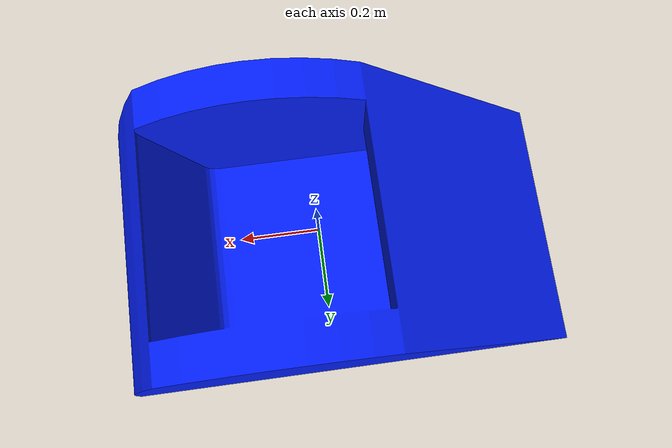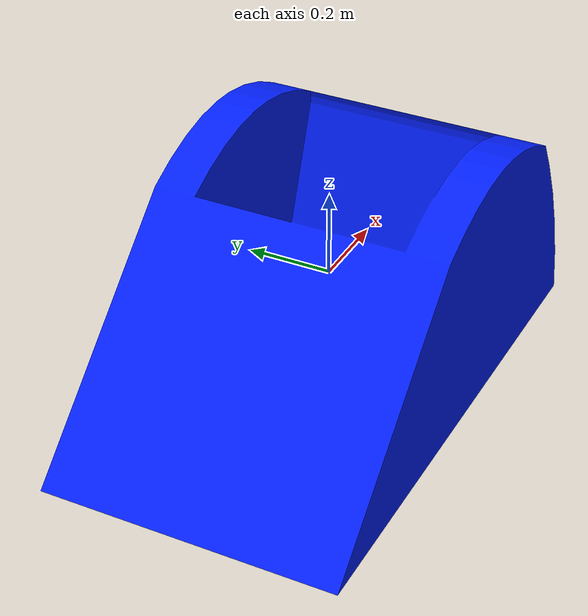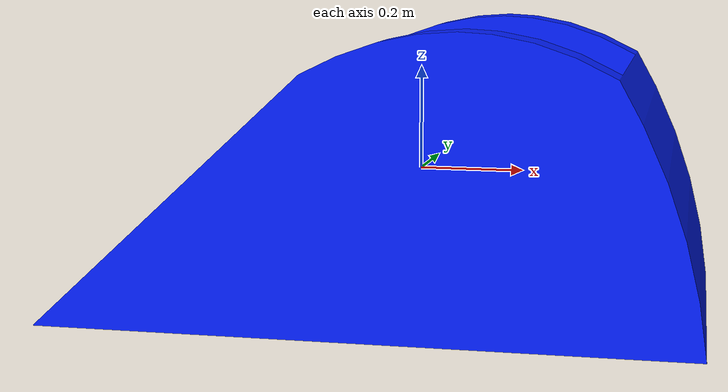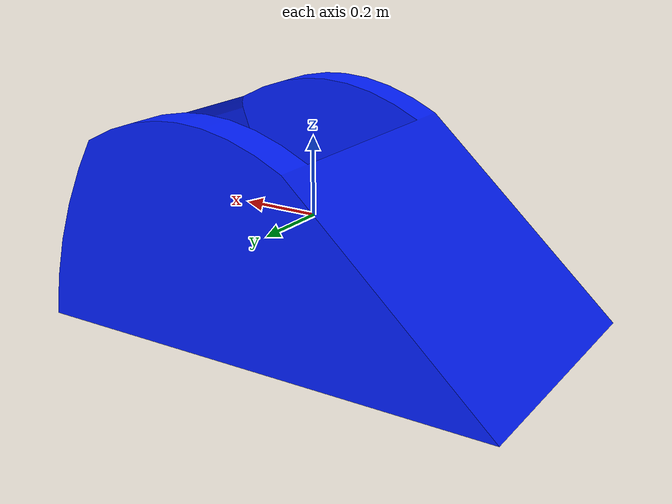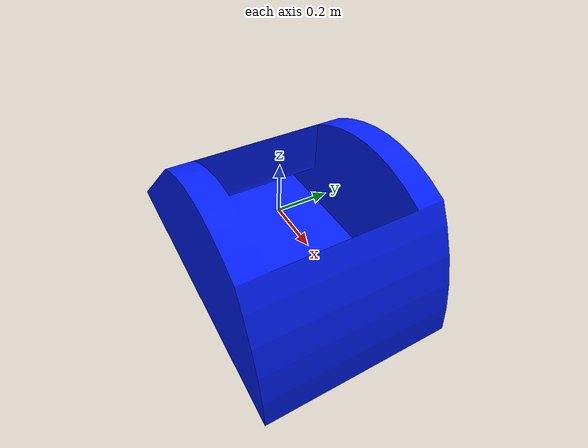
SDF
<?xml version="1.0"?>

<sdf version="1.10">
  <model name='hand_base'>
    <link name='hand_base_link'>
      <collision name="collision_base_0">
        <pose>0 0 0 0 0 0</pose>
        <geometry>
          <mesh>
            <uri>file:/hand_base/meshes/base_link.STL</uri>
            <scale> 1 1 1 </scale>
          </mesh>
        </geometry>
      </collision>
      <visual name="visual_base_0">
        <pose>0 0 0 0 0 0</pose>
        <geometry>
          <mesh>
            <uri>file:/hand_base/meshes/base_link.STL</uri>
            <scale> 1 1 1 </scale>
          </mesh>
        </geometry>
        <material>
          <diffuse>0.0125000002 0.125 1 1</diffuse>
          <ambient>0.0125000002 0.125 1 1</ambient>
        </material>
      </visual>
    </link>
  </model>
</sdf>
